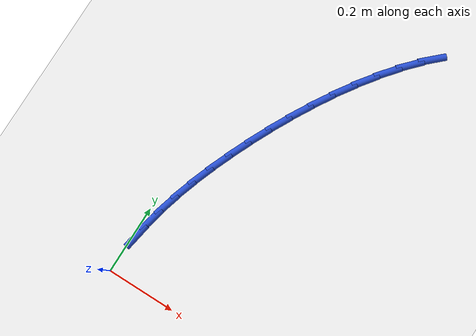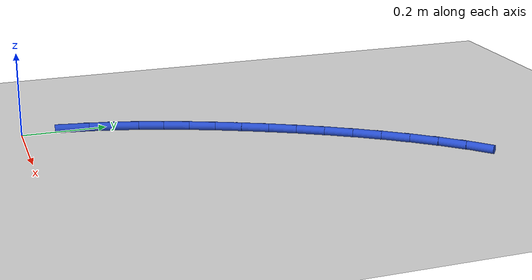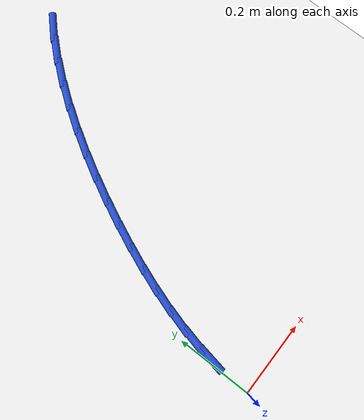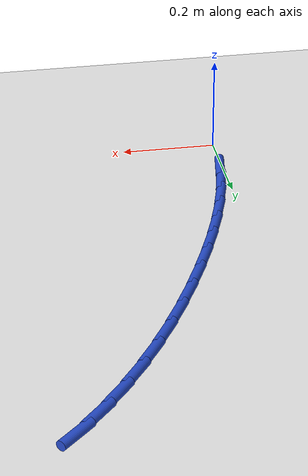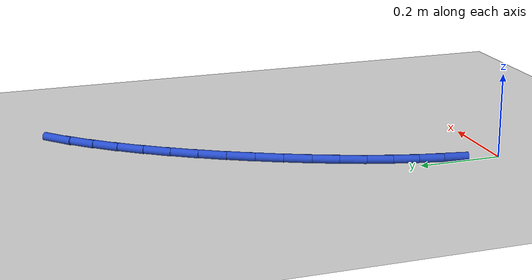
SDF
<sdf version="1.6">
 <world name="default">
  <model name="ground_plane">
   <static>1</static>
   <link name="link">
    <collision name="collision">
     <geometry><plane><normal>0 0 1</normal><size>100 100</size></plane></geometry>
     <surface><friction><ode><mu>100</mu><mu2>50</mu2></ode></friction></surface>
    </collision>
    <visual name="visual">
     <cast_shadows>0</cast_shadows>
     <geometry><plane><normal>0 0 1</normal><size>100 100</size></plane></geometry>
     <material>
      <script><uri>file://media/materials/scripts/gazebo.material</uri><name>Gazebo/WhiteGlow</name></script>
     </material>
    </visual>
   </link>
  </model>
  <model name="line">
   <link name="link_2">
    <pose>0.009364393252909853 0.11782068161447194 0.01 0 1.57 1.399349343436957</pose>
    <collision name="collision">
     <geometry><cylinder><radius>0.01</radius><length>0.08</length></cylinder></geometry>
    </collision>
    <visual name="visual">
     <material>
      <script><name>Gazebo/Blue</name><uri>file://media/materials/scripts/gazebo.material</uri></script>
     </material>
     <geometry><cylinder><radius>0.01</radius><length>0.08</length></cylinder></geometry>
    </visual>
   </link>
   <link name="link_3">
    <pose>0.01940587595206908 0.17581471853881406 0.01 0 1.57 1.3435691065597113</pose>
    <collision name="collision">
     <geometry><cylinder><radius>0.01</radius><length>0.08</length></cylinder></geometry>
    </collision>
    <visual name="visual">
     <material>
      <script><name>Gazebo/Blue</name><uri>file://media/materials/scripts/gazebo.material</uri></script>
     </material>
     <geometry><cylinder><radius>0.01</radius><length>0.08</length></cylinder></geometry>
    </visual>
   </link>
   <link name="link_4">
    <pose>0.03274218956374803 0.23349263161853748 0.01 0 1.57 1.2929722628480282</pose>
    <collision name="collision">
     <geometry><cylinder><radius>0.01</radius><length>0.08</length></cylinder></geometry>
    </collision>
    <visual name="visual">
     <material>
      <script><name>Gazebo/Blue</name><uri>file://media/materials/scripts/gazebo.material</uri></script>
     </material>
     <geometry><cylinder><radius>0.01</radius><length>0.08</length></cylinder></geometry>
    </visual>
   </link>
   <link name="link_5">
    <pose>0.04916481423598439 0.29107547991162513 0.01 0 1.57 1.2480458863616881</pose>
    <collision name="collision">
     <geometry><cylinder><radius>0.01</radius><length>0.08</length></cylinder></geometry>
    </collision>
    <visual name="visual">
     <material>
      <script><name>Gazebo/Blue</name><uri>file://media/materials/scripts/gazebo.material</uri></script>
     </material>
     <geometry><cylinder><radius>0.01</radius><length>0.08</length></cylinder></geometry>
    </visual>
   </link>
   <link name="link_6">
    <pose>0.0684652301168158 0.34878432247606 0.01 0 1.57 1.2090280383763023</pose>
    <collision name="collision">
     <geometry><cylinder><radius>0.01</radius><length>0.08</length></cylinder></geometry>
    </collision>
    <visual name="visual">
     <material>
      <script><name>Gazebo/Blue</name><uri>file://media/materials/scripts/gazebo.material</uri></script>
     </material>
     <geometry><cylinder><radius>0.01</radius><length>0.08</length></cylinder></geometry>
    </visual>
   </link>
   <link name="link_7">
    <pose>0.0904349173542799 0.406840218369825 0.01 0 1.57 1.17595043093145</pose>
    <collision name="collision">
     <geometry><cylinder><radius>0.01</radius><length>0.08</length></cylinder></geometry>
    </collision>
    <visual name="visual">
     <material>
      <script><name>Gazebo/Blue</name><uri>file://media/materials/scripts/gazebo.material</uri></script>
     </material>
     <geometry><cylinder><radius>0.01</radius><length>0.08</length></cylinder></geometry>
    </visual>
   </link>
   <link name="link_8">
    <pose>0.11486535615178348 0.46546422640228635 0.01 0 1.57 1.1474618942266355</pose>
    <collision name="collision">
     <geometry><cylinder><radius>0.01</radius><length>0.08</length></cylinder></geometry>
    </collision>
    <visual name="visual">
     <material>
      <script><name>Gazebo/Blue</name><uri>file://media/materials/scripts/gazebo.material</uri></script>
     </material>
     <geometry><cylinder><radius>0.01</radius><length>0.08</length></cylinder></geometry>
    </visual>
   </link>
   <link name="link_9">
    <pose>0.14157700190089034 0.5247473020559678 0.01 0 1.57 1.1185145620574826</pose>
    <collision name="collision">
     <geometry><cylinder><radius>0.01</radius><length>0.08</length></cylinder></geometry>
    </collision>
    <visual name="visual">
     <material>
      <script><name>Gazebo/Blue</name><uri>file://media/materials/scripts/gazebo.material</uri></script>
     </material>
     <geometry><cylinder><radius>0.01</radius><length>0.08</length></cylinder></geometry>
    </visual>
   </link>
   <link name="link_10">
    <pose>0.1705019239179567 0.584279236063097 0.01 0 1.57 1.0874693782961296</pose>
    <collision name="collision">
     <geometry><cylinder><radius>0.01</radius><length>0.08</length></cylinder></geometry>
    </collision>
    <visual name="visual">
     <material>
      <script><name>Gazebo/Blue</name><uri>file://media/materials/scripts/gazebo.material</uri></script>
     </material>
     <geometry><cylinder><radius>0.01</radius><length>0.08</length></cylinder></geometry>
    </visual>
   </link>
   <link name="link_11">
    <pose>0.20159906264799193 0.6435291633998494 0.01 0 1.57 1.0537723672195216</pose>
    <collision name="collision">
     <geometry><cylinder><radius>0.01</radius><length>0.08</length></cylinder></geometry>
    </collision>
    <visual name="visual">
     <material>
      <script><name>Gazebo/Blue</name><uri>file://media/materials/scripts/gazebo.material</uri></script>
     </material>
     <geometry><cylinder><radius>0.01</radius><length>0.08</length></cylinder></geometry>
    </visual>
   </link>
   <link name="link_12">
    <pose>0.23482735853600545 0.7019662190424023 0.01 0 1.57 1.0168065937363189</pose>
    <collision name="collision">
     <geometry><cylinder><radius>0.01</radius><length>0.08</length></cylinder></geometry>
    </collision>
    <visual name="visual">
     <material>
      <script><name>Gazebo/Blue</name><uri>file://media/materials/scripts/gazebo.material</uri></script>
     </material>
     <geometry><cylinder><radius>0.01</radius><length>0.08</length></cylinder></geometry>
    </visual>
   </link>
   <link name="link_13">
    <pose>0.2701457520270067 0.7590595379669312 0.01 0 1.57 0.9758681996915678</pose>
    <collision name="collision">
     <geometry><cylinder><radius>0.01</radius><length>0.08</length></cylinder></geometry>
    </collision>
    <visual name="visual">
     <material>
      <script><name>Gazebo/Blue</name><uri>file://media/materials/scripts/gazebo.material</uri></script>
     </material>
     <geometry><cylinder><radius>0.01</radius><length>0.08</length></cylinder></geometry>
    </visual>
   </link>
   <link name="link_14">
    <pose>0.3075131835660052 0.8142782551496123 0.01 0 1.57 0.9301433289204873</pose>
    <collision name="collision">
     <geometry><cylinder><radius>0.01</radius><length>0.08</length></cylinder></geometry>
    </collision>
    <visual name="visual">
     <material>
      <script><name>Gazebo/Blue</name><uri>file://media/materials/scripts/gazebo.material</uri></script>
     </material>
     <geometry><cylinder><radius>0.01</radius><length>0.08</length></cylinder></geometry>
    </visual>
   </link>
   <link name="link_15">
    <pose>0.3468885935980103 0.8670915055666221 0.01 0 1.57 0.8786878664936714</pose>
    <collision name="collision">
     <geometry><cylinder><radius>0.01</radius><length>0.08</length></cylinder></geometry>
    </collision>
    <visual name="visual">
     <material>
      <script><name>Gazebo/Blue</name><uri>file://media/materials/scripts/gazebo.material</uri></script>
     </material>
     <geometry><cylinder><radius>0.01</radius><length>0.08</length></cylinder></geometry>
    </visual>
   </link>
   <link name="link_16">
    <pose>0.38823092256803154 0.9169684241941364 0.01 0 1.57 0.8204151404069137</pose>
    <collision name="collision">
     <geometry><cylinder><radius>0.01</radius><length>0.08</length></cylinder></geometry>
    </collision>
    <visual name="visual">
     <material>
      <script><name>Gazebo/Blue</name><uri>file://media/materials/scripts/gazebo.material</uri></script>
     </material>
     <geometry><cylinder><radius>0.01</radius><length>0.08</length></cylinder></geometry>
    </visual>
   </link>
   <link name="link_17">
    <pose>0.43149911092107834 0.9633781460083316 0.01 0 1.57 0.7541020500884198</pose>
    <collision name="collision">
     <geometry><cylinder><radius>0.01</radius><length>0.08</length></cylinder></geometry>
    </collision>
    <visual name="visual">
     <material>
      <script><name>Gazebo/Blue</name><uri>file://media/materials/scripts/gazebo.material</uri></script>
     </material>
     <geometry><cylinder><radius>0.01</radius><length>0.08</length></cylinder></geometry>
    </visual>
   </link>
  </model>
 </world>
</sdf>
